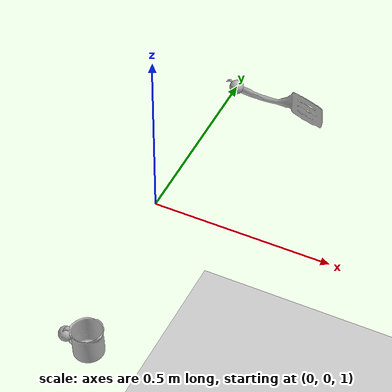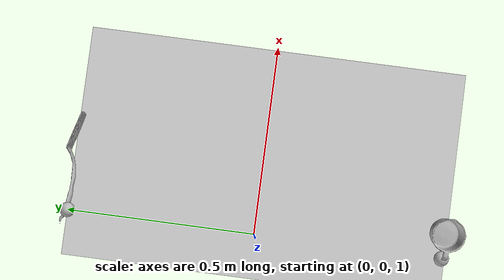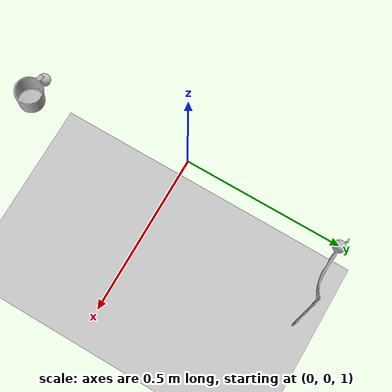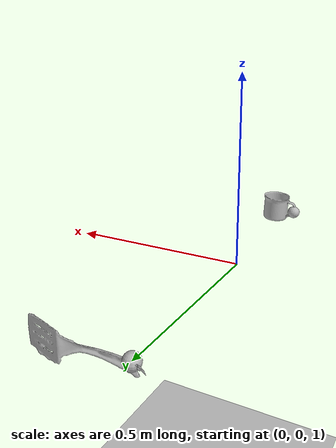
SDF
<sdf version="1.6">
 <world name="b_red_mug_b_spatula_v">
  <include><uri>model://sun</uri></include>
  <include><uri>model://ground_plane</uri></include>
  <include>
   <uri>model://b_spatula</uri>
   <pose>0.146581 0.505236 0.992013 1.576128 -0.007193 -3.141592</pose>
  </include>
  <plugin name="grains_factory" filename="libGrainsFactoryPlugin.so">
   <pose>0.061612 -0.504614 1.006537 0 0 0</pose>
   <mass>0.001</mass>
   <radius>0.015</radius>
   <quantity>100</quantity>
   <friction>0.4</friction>
   <friction2>0.4</friction2>
   <velocity_decay>0.3</velocity_decay>
  </plugin>
  <include><uri>model://b_red_mug</uri><pose>0.061612 -0.504614 1.006537 0.423677 0 3.060068</pose></include>
  <include>
   <uri>model://gripper</uri>
   <name>left_ee</name>
   <pose>0 0.5 1 0 0 0</pose>
   <plugin name="l_force_controller" filename="libvelocity_controller_plugin.so">
    <linkName>link</linkName>
    <topicName>set_l_ee_twist</topicName>
    <gains>
     <linear><P>100.0</P><I>0.0</I><D>25.0</D></linear>
     <angular><P>100.0</P><I>0.0</I><D>25.0</D></angular>
    </gains>
   </plugin>
   <plugin name="l_grip" filename="libGripPlugin.so">
    <parentLinkName>link</parentLinkName>
    <childLinkName>b_spatula::link</childLinkName>
    <relativePose>0.146581 0.005236 -0.007987 1.57613 -0.007193 -3.14159</relativePose>
   </plugin>
   <plugin name="l_tf_broadcaster" filename="libtf_broadcaster_plugin.so">
    <linkName>link</linkName>
    <frameName>l_gripper_tool_frame</frameName>
   </plugin>
  </include>
  <include>
   <uri>model://gripper</uri>
   <name>right_ee</name>
   <pose>0 -0.5 1 1.547368 1.402341 1.343703</pose>
   <plugin name="r_force_controller" filename="libvelocity_controller_plugin.so">
    <linkName>link</linkName>
    <topicName>set_r_ee_twist</topicName>
    <gains>
     <linear><P>100.0</P><I>0.0</I><D>25.0</D></linear>
     <angular><P>100.0</P><I>0.0</I><D>25.0</D></angular>
    </gains>
   </plugin>
   <plugin name="r_grip" filename="libGripPlugin.so">
    <parentLinkName>link</parentLinkName>
    <childLinkName>b_red_mug::link</childLinkName>
    <relativePose>-0.00780861 0.00428533 0.0614876 1.24173 -1.34456 1.65836</relativePose>
   </plugin>
   <plugin name="r_tf_broadcaster" filename="libtf_broadcaster_plugin.so">
    <linkName>link</linkName>
    <frameName>r_gripper_tool_frame</frameName>
   </plugin>
  </include>
  <plugin name="feature_visualization_plugin" filename="libgiskard_visualization_plugin.so"/>
 </world>
</sdf>

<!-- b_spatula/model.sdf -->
<sdf version='1.6'>
	<model name='b_spatula'>
		<static>false</static>
		<pose>0 0 0 0 0 0</pose>

		<link name='link'>
			<inertial>
			<mass>0.11</mass>
			<pose>0.00088072 -6.5132e-05 0.00086388 0 0 0</pose>
				<inertia>
					<ixx>8.1404e-07</ixx>
					<ixy>0</ixy>
					<ixz>0</ixz>
					<iyy>1.1521e-06</iyy>
					<iyz>0</iyz>
					<izz>5.3661e-07</izz>
				</inertia>
			</inertial>

			<sensor name="tool_contact_sensor" type="contact">
				<always_on>true</always_on>
				<update_rate>30.0</update_rate>
				<contact>
					<collision>collision</collision>
				</contact>
				<plugin name="tool_bumper" filename="libgazebo_ros_bumper.so">
					<bumperTopicName>tool_contact_sensor_state</bumperTopicName>
					<frameName>world</frameName>
				</plugin>
			</sensor>

			<collision name='collision'>
				<geometry>
					<mesh>
						<uri>model://b_spatula/b_spatula.dae</uri>
					</mesh>
				</geometry>
				<surface>
					<friction>
						<ode>
							<mu>0.2</mu>
							<mu2>0.2</mu2>
						</ode>
					</friction>
				</surface>
			</collision>
			<visual name='visual'>
				<geometry>
					<mesh>
						<uri>model://b_spatula/b_spatula.dae</uri>
					</mesh>
				</geometry>
			</visual>
		</link>
	</model>
</sdf>

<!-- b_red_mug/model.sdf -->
<sdf version='1.6'>
	<model name='b_red_mug'>
		<static>false</static>
		<pose>0 0 0 0 0 0</pose>

		<link name='link'>
			<inertial>
			<mass>0.096</mass>
			<pose>-0.00011045 0.0017861 0.0028209 0 0 0</pose>
				<inertia>
					<ixx>1.66e-06</ixx>
					<ixy>0</ixy>
					<ixz>0</ixz>
					<iyy>1.357e-06</iyy>
					<iyz>0</iyz>
					<izz>7.1669e-07</izz>
				</inertia>
			</inertial>
			<collision name='collision'>
				<geometry>
					<mesh>
						<uri>model://b_red_mug/b_red_mug.dae</uri>
					</mesh>
				</geometry>
				<surface>
					<friction>
						<ode>
							<mu>0.2</mu>
							<mu2>0.2</mu2>
						</ode>
					</friction>
				</surface>
			</collision>
			<visual name='visual'>
				<geometry>
					<mesh>
						<uri>model://b_red_mug/b_red_mug.dae</uri>
					</mesh>
				</geometry>
			</visual>
		</link>
	</model>
</sdf>

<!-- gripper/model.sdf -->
<sdf version='1.6'>
    <model name='gripper'>
        <static>false</static>
        <allow_auto_disable>false</allow_auto_disable>

        <pose>0 0 0 0 0 0</pose>

        <link name='link'>
            <pose>0 0 0 0 0 0</pose>

            <gravity>false</gravity>

            <visual name='visual'>
                <geometry>
                    <sphere>
                        <radius>0.02</radius>
                    </sphere>
                </geometry>
            </visual>

        </link>
    </model>
</sdf>
